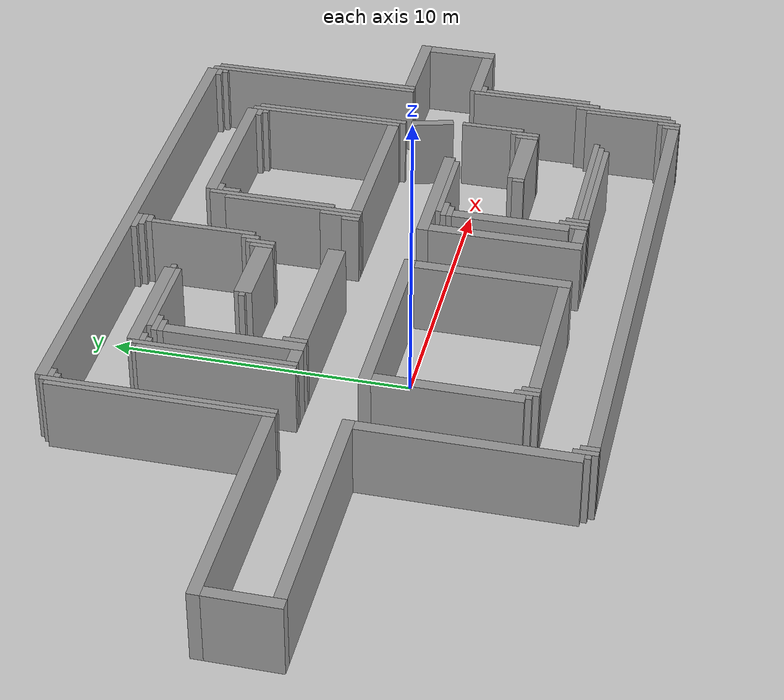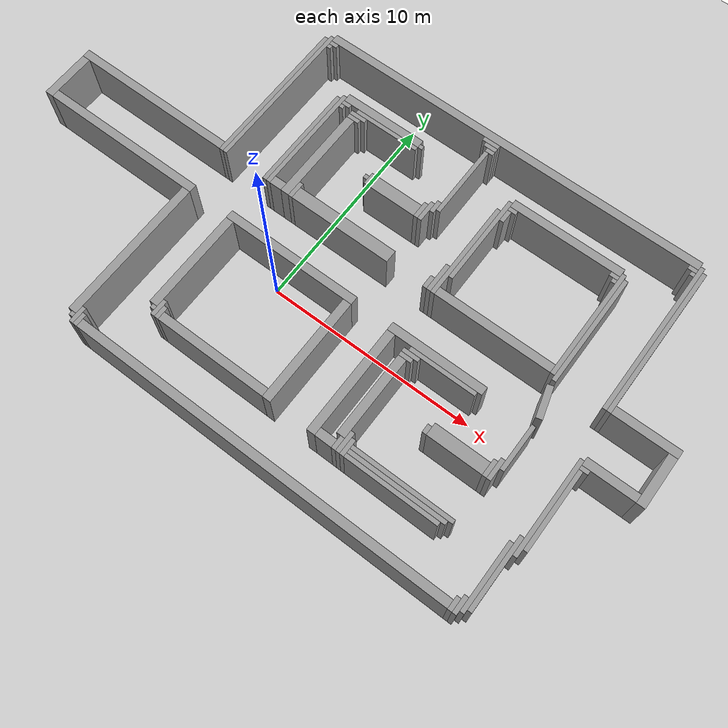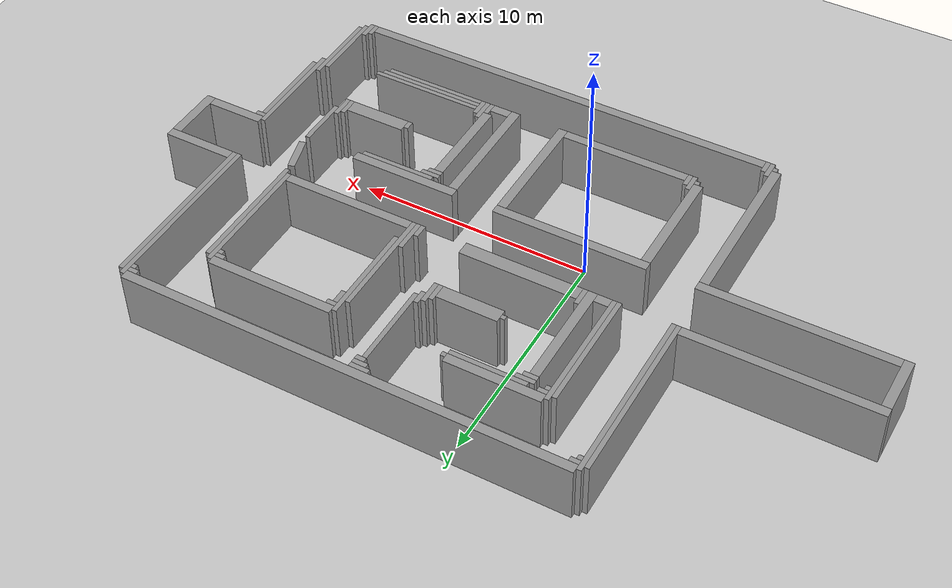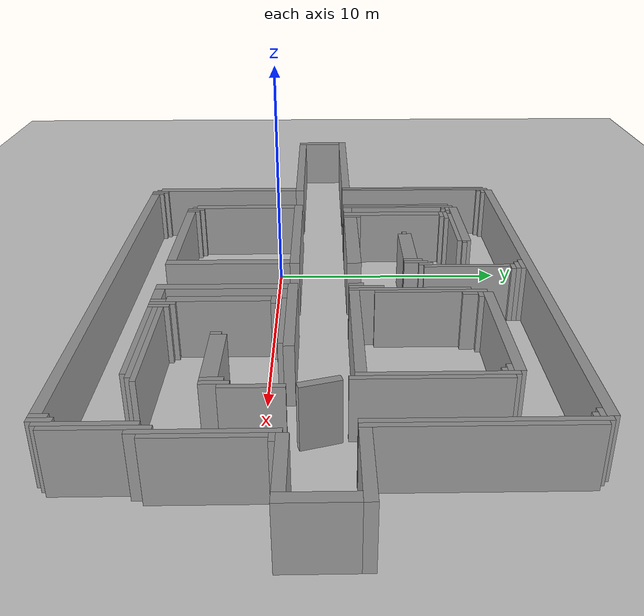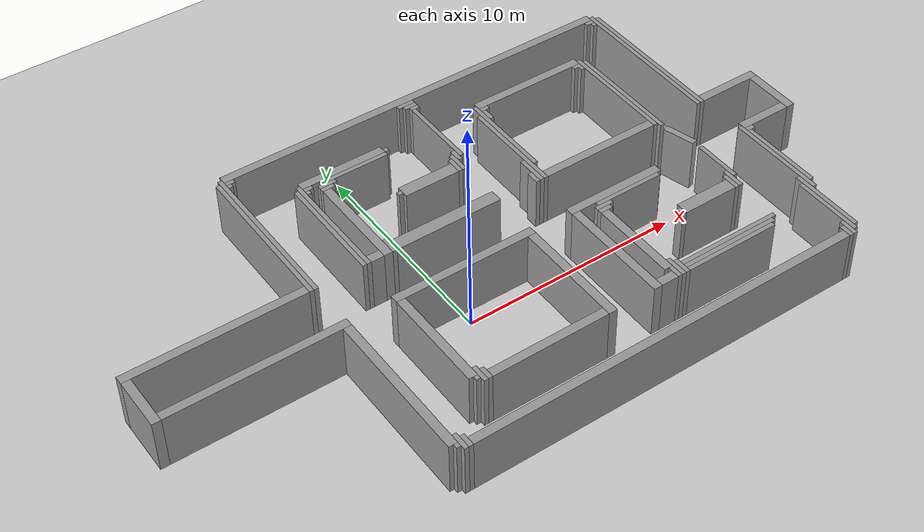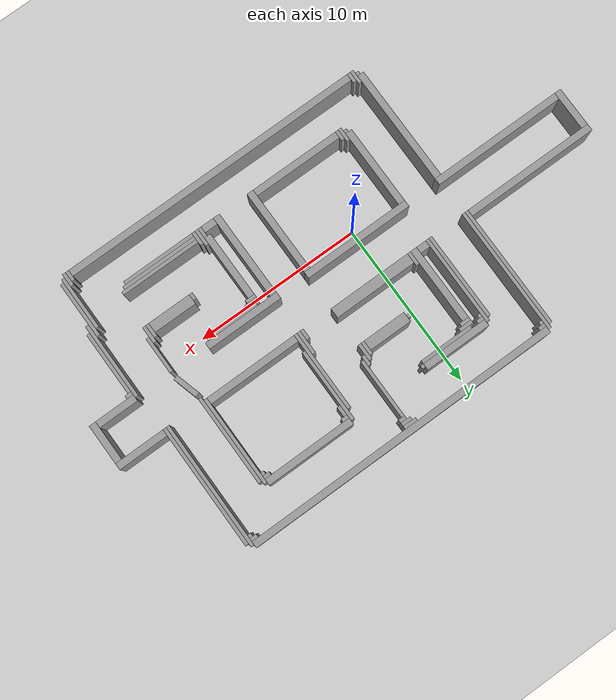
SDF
<?xml version='1.0'?>
<sdf version='1.6'>
  <world name='default'>
    <include><uri>model://ground_plane</uri></include>
    <include><uri>model://sun</uri></include>
    <physics type='ode'>
      <max_step_size>0.001</max_step_size>
      <real_time_factor>1</real_time_factor>
      <real_time_update_rate>1000</real_time_update_rate>
    </physics>
    <model name='lattice_fork_walls'>
      <static>1</static>
      <pose>0 0 0 0 0 0</pose>
    <link name='wall_0'>
      <collision name='wall_0_collision'>
        <pose>4.500 10.600 1.250 0 0 0</pose>
        <geometry><box><size>19.000 0.400 2.50</size></box></geometry>
      </collision>
      <visual name='wall_0_visual'>
        <pose>4.500 10.600 1.250 0 0 0</pose>
        <geometry><box><size>19.000 0.400 2.50</size></box></geometry>
        <material>
          <script>
            <uri>file://media/materials/scripts/gazebo.material</uri>
            <name>Gazebo/Grey</name>
          </script>
        </material>
      </visual>
    </link>
    <link name='wall_1'>
      <collision name='wall_1_collision'>
        <pose>-5.100 6.800 1.250 0 0 0</pose>
        <geometry><box><size>0.200 7.600 2.50</size></box></geometry>
      </collision>
      <visual name='wall_1_visual'>
        <pose>-5.100 6.800 1.250 0 0 0</pose>
        <geometry><box><size>0.200 7.600 2.50</size></box></geometry>
        <material>
          <script>
            <uri>file://media/materials/scripts/gazebo.material</uri>
            <name>Gazebo/Grey</name>
          </script>
        </material>
      </visual>
    </link>
    <link name='wall_2'>
      <collision name='wall_2_collision'>
        <pose>14.100 6.800 1.250 0 0 0</pose>
        <geometry><box><size>0.200 7.600 2.50</size></box></geometry>
      </collision>
      <visual name='wall_2_visual'>
        <pose>14.100 6.800 1.250 0 0 0</pose>
        <geometry><box><size>0.200 7.600 2.50</size></box></geometry>
        <material>
          <script>
            <uri>file://media/materials/scripts/gazebo.material</uri>
            <name>Gazebo/Grey</name>
          </script>
        </material>
      </visual>
    </link>
    <link name='wall_3'>
      <collision name='wall_3_collision'>
        <pose>-5.300 6.700 1.250 0 0 0</pose>
        <geometry><box><size>0.200 7.400 2.50</size></box></geometry>
      </collision>
      <visual name='wall_3_visual'>
        <pose>-5.300 6.700 1.250 0 0 0</pose>
        <geometry><box><size>0.200 7.400 2.50</size></box></geometry>
        <material>
          <script>
            <uri>file://media/materials/scripts/gazebo.material</uri>
            <name>Gazebo/Grey</name>
          </script>
        </material>
      </visual>
    </link>
    <link name='wall_4'>
      <collision name='wall_4_collision'>
        <pose>-4.800 10.300 1.250 0 0 0</pose>
        <geometry><box><size>0.400 0.200 2.50</size></box></geometry>
      </collision>
      <visual name='wall_4_visual'>
        <pose>-4.800 10.300 1.250 0 0 0</pose>
        <geometry><box><size>0.400 0.200 2.50</size></box></geometry>
        <material>
          <script>
            <uri>file://media/materials/scripts/gazebo.material</uri>
            <name>Gazebo/Grey</name>
          </script>
        </material>
      </visual>
    </link>
    <link name='wall_5'>
      <collision name='wall_5_collision'>
        <pose>3.800 10.300 1.250 0 0 0</pose>
        <geometry><box><size>0.800 0.200 2.50</size></box></geometry>
      </collision>
      <visual name='wall_5_visual'>
        <pose>3.800 10.300 1.250 0 0 0</pose>
        <geometry><box><size>0.800 0.200 2.50</size></box></geometry>
        <material>
          <script>
            <uri>file://media/materials/scripts/gazebo.material</uri>
            <name>Gazebo/Grey</name>
          </script>
        </material>
      </visual>
    </link>
    <link name='wall_6'>
      <collision name='wall_6_collision'>
        <pose>13.800 10.300 1.250 0 0 0</pose>
        <geometry><box><size>0.400 0.200 2.50</size></box></geometry>
      </collision>
      <visual name='wall_6_visual'>
        <pose>13.800 10.300 1.250 0 0 0</pose>
        <geometry><box><size>0.400 0.200 2.50</size></box></geometry>
        <material>
          <script>
            <uri>file://media/materials/scripts/gazebo.material</uri>
            <name>Gazebo/Grey</name>
          </script>
        </material>
      </visual>
    </link>
    <link name='wall_7'>
      <collision name='wall_7_collision'>
        <pose>14.300 6.700 1.250 0 0 0</pose>
        <geometry><box><size>0.200 7.400 2.50</size></box></geometry>
      </collision>
      <visual name='wall_7_visual'>
        <pose>14.300 6.700 1.250 0 0 0</pose>
        <geometry><box><size>0.200 7.400 2.50</size></box></geometry>
        <material>
          <script>
            <uri>file://media/materials/scripts/gazebo.material</uri>
            <name>Gazebo/Grey</name>
          </script>
        </material>
      </visual>
    </link>
    <link name='wall_8'>
      <collision name='wall_8_collision'>
        <pose>-4.900 10.100 1.250 0 0 0</pose>
        <geometry><box><size>0.200 0.200 2.50</size></box></geometry>
      </collision>
      <visual name='wall_8_visual'>
        <pose>-4.900 10.100 1.250 0 0 0</pose>
        <geometry><box><size>0.200 0.200 2.50</size></box></geometry>
        <material>
          <script>
            <uri>file://media/materials/scripts/gazebo.material</uri>
            <name>Gazebo/Grey</name>
          </script>
        </material>
      </visual>
    </link>
    <link name='wall_9'>
      <collision name='wall_9_collision'>
        <pose>3.900 10.100 1.250 0 0 0</pose>
        <geometry><box><size>0.600 0.200 2.50</size></box></geometry>
      </collision>
      <visual name='wall_9_visual'>
        <pose>3.900 10.100 1.250 0 0 0</pose>
        <geometry><box><size>0.600 0.200 2.50</size></box></geometry>
        <material>
          <script>
            <uri>file://media/materials/scripts/gazebo.material</uri>
            <name>Gazebo/Grey</name>
          </script>
        </material>
      </visual>
    </link>
    <link name='wall_10'>
      <collision name='wall_10_collision'>
        <pose>13.900 10.100 1.250 0 0 0</pose>
        <geometry><box><size>0.200 0.200 2.50</size></box></geometry>
      </collision>
      <visual name='wall_10_visual'>
        <pose>13.900 10.100 1.250 0 0 0</pose>
        <geometry><box><size>0.200 0.200 2.50</size></box></geometry>
        <material>
          <script>
            <uri>file://media/materials/scripts/gazebo.material</uri>
            <name>Gazebo/Grey</name>
          </script>
        </material>
      </visual>
    </link>
    <link name='wall_11'>
      <collision name='wall_11_collision'>
        <pose>4.000 9.900 1.250 0 0 0</pose>
        <geometry><box><size>0.400 0.200 2.50</size></box></geometry>
      </collision>
      <visual name='wall_11_visual'>
        <pose>4.000 9.900 1.250 0 0 0</pose>
        <geometry><box><size>0.400 0.200 2.50</size></box></geometry>
        <material>
          <script>
            <uri>file://media/materials/scripts/gazebo.material</uri>
            <name>Gazebo/Grey</name>
          </script>
        </material>
      </visual>
    </link>
    <link name='wall_12'>
      <collision name='wall_12_collision'>
        <pose>3.900 8.000 1.250 0 0 0</pose>
        <geometry><box><size>0.200 3.600 2.50</size></box></geometry>
      </collision>
      <visual name='wall_12_visual'>
        <pose>3.900 8.000 1.250 0 0 0</pose>
        <geometry><box><size>0.200 3.600 2.50</size></box></geometry>
        <material>
          <script>
            <uri>file://media/materials/scripts/gazebo.material</uri>
            <name>Gazebo/Grey</name>
          </script>
        </material>
      </visual>
    </link>
    <link name='wall_13'>
      <collision name='wall_13_collision'>
        <pose>-0.600 8.400 1.250 0 0 0</pose>
        <geometry><box><size>4.000 0.400 2.50</size></box></geometry>
      </collision>
      <visual name='wall_13_visual'>
        <pose>-0.600 8.400 1.250 0 0 0</pose>
        <geometry><box><size>4.000 0.400 2.50</size></box></geometry>
        <material>
          <script>
            <uri>file://media/materials/scripts/gazebo.material</uri>
            <name>Gazebo/Grey</name>
          </script>
        </material>
      </visual>
    </link>
    <link name='wall_14'>
      <collision name='wall_14_collision'>
        <pose>8.900 8.400 1.250 0 0 0</pose>
        <geometry><box><size>5.400 0.400 2.50</size></box></geometry>
      </collision>
      <visual name='wall_14_visual'>
        <pose>8.900 8.400 1.250 0 0 0</pose>
        <geometry><box><size>5.400 0.400 2.50</size></box></geometry>
        <material>
          <script>
            <uri>file://media/materials/scripts/gazebo.material</uri>
            <name>Gazebo/Grey</name>
          </script>
        </material>
      </visual>
    </link>
    <link name='wall_15'>
      <collision name='wall_15_collision'>
        <pose>-2.700 5.700 1.250 0 0 0</pose>
        <geometry><box><size>0.200 5.400 2.50</size></box></geometry>
      </collision>
      <visual name='wall_15_visual'>
        <pose>-2.700 5.700 1.250 0 0 0</pose>
        <geometry><box><size>0.200 5.400 2.50</size></box></geometry>
        <material>
          <script>
            <uri>file://media/materials/scripts/gazebo.material</uri>
            <name>Gazebo/Grey</name>
          </script>
        </material>
      </visual>
    </link>
    <link name='wall_16'>
      <collision name='wall_16_collision'>
        <pose>1.500 8.300 1.250 0 0 0</pose>
        <geometry><box><size>0.200 0.200 2.50</size></box></geometry>
      </collision>
      <visual name='wall_16_visual'>
        <pose>1.500 8.300 1.250 0 0 0</pose>
        <geometry><box><size>0.200 0.200 2.50</size></box></geometry>
        <material>
          <script>
            <uri>file://media/materials/scripts/gazebo.material</uri>
            <name>Gazebo/Grey</name>
          </script>
        </material>
      </visual>
    </link>
    <link name='wall_17'>
      <collision name='wall_17_collision'>
        <pose>6.100 6.200 1.250 0 0 0</pose>
        <geometry><box><size>0.200 4.400 2.50</size></box></geometry>
      </collision>
      <visual name='wall_17_visual'>
        <pose>6.100 6.200 1.250 0 0 0</pose>
        <geometry><box><size>0.200 4.400 2.50</size></box></geometry>
        <material>
          <script>
            <uri>file://media/materials/scripts/gazebo.material</uri>
            <name>Gazebo/Grey</name>
          </script>
        </material>
      </visual>
    </link>
    <link name='wall_18'>
      <collision name='wall_18_collision'>
        <pose>11.700 5.700 1.250 0 0 0</pose>
        <geometry><box><size>0.200 5.400 2.50</size></box></geometry>
      </collision>
      <visual name='wall_18_visual'>
        <pose>11.700 5.700 1.250 0 0 0</pose>
        <geometry><box><size>0.200 5.400 2.50</size></box></geometry>
        <material>
          <script>
            <uri>file://media/materials/scripts/gazebo.material</uri>
            <name>Gazebo/Grey</name>
          </script>
        </material>
      </visual>
    </link>
    <link name='wall_19'>
      <collision name='wall_19_collision'>
        <pose>-2.900 5.600 1.250 0 0 0</pose>
        <geometry><box><size>0.200 5.200 2.50</size></box></geometry>
      </collision>
      <visual name='wall_19_visual'>
        <pose>-2.900 5.600 1.250 0 0 0</pose>
        <geometry><box><size>0.200 5.200 2.50</size></box></geometry>
        <material>
          <script>
            <uri>file://media/materials/scripts/gazebo.material</uri>
            <name>Gazebo/Grey</name>
          </script>
        </material>
      </visual>
    </link>
    <link name='wall_20'>
      <collision name='wall_20_collision'>
        <pose>-2.400 8.100 1.250 0 0 0</pose>
        <geometry><box><size>0.400 0.200 2.50</size></box></geometry>
      </collision>
      <visual name='wall_20_visual'>
        <pose>-2.400 8.100 1.250 0 0 0</pose>
        <geometry><box><size>0.400 0.200 2.50</size></box></geometry>
        <material>
          <script>
            <uri>file://media/materials/scripts/gazebo.material</uri>
            <name>Gazebo/Grey</name>
          </script>
        </material>
      </visual>
    </link>
    <link name='wall_21'>
      <collision name='wall_21_collision'>
        <pose>-0.200 8.100 1.250 0 0 0</pose>
        <geometry><box><size>3.200 0.200 2.50</size></box></geometry>
      </collision>
      <visual name='wall_21_visual'>
        <pose>-0.200 8.100 1.250 0 0 0</pose>
        <geometry><box><size>3.200 0.200 2.50</size></box></geometry>
        <material>
          <script>
            <uri>file://media/materials/scripts/gazebo.material</uri>
            <name>Gazebo/Grey</name>
          </script>
        </material>
      </visual>
    </link>
    <link name='wall_22'>
      <collision name='wall_22_collision'>
        <pose>6.400 8.100 1.250 0 0 0</pose>
        <geometry><box><size>0.400 0.200 2.50</size></box></geometry>
      </collision>
      <visual name='wall_22_visual'>
        <pose>6.400 8.100 1.250 0 0 0</pose>
        <geometry><box><size>0.400 0.200 2.50</size></box></geometry>
        <material>
          <script>
            <uri>file://media/materials/scripts/gazebo.material</uri>
            <name>Gazebo/Grey</name>
          </script>
        </material>
      </visual>
    </link>
    <link name='wall_23'>
      <collision name='wall_23_collision'>
        <pose>11.400 8.100 1.250 0 0 0</pose>
        <geometry><box><size>0.400 0.200 2.50</size></box></geometry>
      </collision>
      <visual name='wall_23_visual'>
        <pose>11.400 8.100 1.250 0 0 0</pose>
        <geometry><box><size>0.400 0.200 2.50</size></box></geometry>
        <material>
          <script>
            <uri>file://media/materials/scripts/gazebo.material</uri>
            <name>Gazebo/Grey</name>
          </script>
        </material>
      </visual>
    </link>
    <link name='wall_24'>
      <collision name='wall_24_collision'>
        <pose>11.900 5.500 1.250 0 0 0</pose>
        <geometry><box><size>0.200 5.400 2.50</size></box></geometry>
      </collision>
      <visual name='wall_24_visual'>
        <pose>11.900 5.500 1.250 0 0 0</pose>
        <geometry><box><size>0.200 5.400 2.50</size></box></geometry>
        <material>
          <script>
            <uri>file://media/materials/scripts/gazebo.material</uri>
            <name>Gazebo/Grey</name>
          </script>
        </material>
      </visual>
    </link>
    <link name='wall_25'>
      <collision name='wall_25_collision'>
        <pose>-2.500 7.900 1.250 0 0 0</pose>
        <geometry><box><size>0.200 0.200 2.50</size></box></geometry>
      </collision>
      <visual name='wall_25_visual'>
        <pose>-2.500 7.900 1.250 0 0 0</pose>
        <geometry><box><size>0.200 0.200 2.50</size></box></geometry>
        <material>
          <script>
            <uri>file://media/materials/scripts/gazebo.material</uri>
            <name>Gazebo/Grey</name>
          </script>
        </material>
      </visual>
    </link>
    <link name='wall_26'>
      <collision name='wall_26_collision'>
        <pose>-1.600 7.900 1.250 0 0 0</pose>
        <geometry><box><size>0.800 0.200 2.50</size></box></geometry>
      </collision>
      <visual name='wall_26_visual'>
        <pose>-1.600 7.900 1.250 0 0 0</pose>
        <geometry><box><size>0.800 0.200 2.50</size></box></geometry>
        <material>
          <script>
            <uri>file://media/materials/scripts/gazebo.material</uri>
            <name>Gazebo/Grey</name>
          </script>
        </material>
      </visual>
    </link>
    <link name='wall_27'>
      <collision name='wall_27_collision'>
        <pose>6.300 7.700 1.250 0 0 0</pose>
        <geometry><box><size>0.200 0.600 2.50</size></box></geometry>
      </collision>
      <visual name='wall_27_visual'>
        <pose>6.300 7.700 1.250 0 0 0</pose>
        <geometry><box><size>0.200 0.600 2.50</size></box></geometry>
        <material>
          <script>
            <uri>file://media/materials/scripts/gazebo.material</uri>
            <name>Gazebo/Grey</name>
          </script>
        </material>
      </visual>
    </link>
    <link name='wall_28'>
      <collision name='wall_28_collision'>
        <pose>11.500 7.900 1.250 0 0 0</pose>
        <geometry><box><size>0.200 0.200 2.50</size></box></geometry>
      </collision>
      <visual name='wall_28_visual'>
        <pose>11.500 7.900 1.250 0 0 0</pose>
        <geometry><box><size>0.200 0.200 2.50</size></box></geometry>
        <material>
          <script>
            <uri>file://media/materials/scripts/gazebo.material</uri>
            <name>Gazebo/Grey</name>
          </script>
        </material>
      </visual>
    </link>
    <link name='wall_29'>
      <collision name='wall_29_collision'>
        <pose>-1.700 7.700 1.250 0 0 0</pose>
        <geometry><box><size>0.600 0.200 2.50</size></box></geometry>
      </collision>
      <visual name='wall_29_visual'>
        <pose>-1.700 7.700 1.250 0 0 0</pose>
        <geometry><box><size>0.600 0.200 2.50</size></box></geometry>
        <material>
          <script>
            <uri>file://media/materials/scripts/gazebo.material</uri>
            <name>Gazebo/Grey</name>
          </script>
        </material>
      </visual>
    </link>
    <link name='wall_30'>
      <collision name='wall_30_collision'>
        <pose>5.900 5.400 1.250 0 0 0</pose>
        <geometry><box><size>0.200 4.800 2.50</size></box></geometry>
      </collision>
      <visual name='wall_30_visual'>
        <pose>5.900 5.400 1.250 0 0 0</pose>
        <geometry><box><size>0.200 4.800 2.50</size></box></geometry>
        <material>
          <script>
            <uri>file://media/materials/scripts/gazebo.material</uri>
            <name>Gazebo/Grey</name>
          </script>
        </material>
      </visual>
    </link>
    <link name='wall_31'>
      <collision name='wall_31_collision'>
        <pose>-1.800 5.300 1.250 0 0 0</pose>
        <geometry><box><size>0.400 4.600 2.50</size></box></geometry>
      </collision>
      <visual name='wall_31_visual'>
        <pose>-1.800 5.300 1.250 0 0 0</pose>
        <geometry><box><size>0.400 4.600 2.50</size></box></geometry>
        <material>
          <script>
            <uri>file://media/materials/scripts/gazebo.material</uri>
            <name>Gazebo/Grey</name>
          </script>
        </material>
      </visual>
    </link>
    <link name='wall_32'>
      <collision name='wall_32_collision'>
        <pose>3.700 6.300 1.250 0 0 0</pose>
        <geometry><box><size>0.200 0.600 2.50</size></box></geometry>
      </collision>
      <visual name='wall_32_visual'>
        <pose>3.700 6.300 1.250 0 0 0</pose>
        <geometry><box><size>0.200 0.600 2.50</size></box></geometry>
        <material>
          <script>
            <uri>file://media/materials/scripts/gazebo.material</uri>
            <name>Gazebo/Grey</name>
          </script>
        </material>
      </visual>
    </link>
    <link name='wall_33'>
      <collision name='wall_33_collision'>
        <pose>3.500 5.900 1.250 0 0 0</pose>
        <geometry><box><size>0.200 1.000 2.50</size></box></geometry>
      </collision>
      <visual name='wall_33_visual'>
        <pose>3.500 5.900 1.250 0 0 0</pose>
        <geometry><box><size>0.200 1.000 2.50</size></box></geometry>
        <material>
          <script>
            <uri>file://media/materials/scripts/gazebo.material</uri>
            <name>Gazebo/Grey</name>
          </script>
        </material>
      </visual>
    </link>
    <link name='wall_34'>
      <collision name='wall_34_collision'>
        <pose>3.300 5.800 1.250 0 0 0</pose>
        <geometry><box><size>0.200 0.800 2.50</size></box></geometry>
      </collision>
      <visual name='wall_34_visual'>
        <pose>3.300 5.800 1.250 0 0 0</pose>
        <geometry><box><size>0.200 0.800 2.50</size></box></geometry>
        <material>
          <script>
            <uri>file://media/materials/scripts/gazebo.material</uri>
            <name>Gazebo/Grey</name>
          </script>
        </material>
      </visual>
    </link>
    <link name='wall_35'>
      <collision name='wall_35_collision'>
        <pose>1.900 5.700 1.250 0 0 0</pose>
        <geometry><box><size>2.600 0.600 2.50</size></box></geometry>
      </collision>
      <visual name='wall_35_visual'>
        <pose>1.900 5.700 1.250 0 0 0</pose>
        <geometry><box><size>2.600 0.600 2.50</size></box></geometry>
        <material>
          <script>
            <uri>file://media/materials/scripts/gazebo.material</uri>
            <name>Gazebo/Grey</name>
          </script>
        </material>
      </visual>
    </link>
    <link name='wall_36'>
      <collision name='wall_36_collision'>
        <pose>0.500 5.700 1.250 0 0 0</pose>
        <geometry><box><size>0.200 0.200 2.50</size></box></geometry>
      </collision>
      <visual name='wall_36_visual'>
        <pose>0.500 5.700 1.250 0 0 0</pose>
        <geometry><box><size>0.200 0.200 2.50</size></box></geometry>
        <material>
          <script>
            <uri>file://media/materials/scripts/gazebo.material</uri>
            <name>Gazebo/Grey</name>
          </script>
        </material>
      </visual>
    </link>
    <link name='wall_37'>
      <collision name='wall_37_collision'>
        <pose>5.700 3.700 1.250 0 0 0</pose>
        <geometry><box><size>0.200 1.400 2.50</size></box></geometry>
      </collision>
      <visual name='wall_37_visual'>
        <pose>5.700 3.700 1.250 0 0 0</pose>
        <geometry><box><size>0.200 1.400 2.50</size></box></geometry>
        <material>
          <script>
            <uri>file://media/materials/scripts/gazebo.material</uri>
            <name>Gazebo/Grey</name>
          </script>
        </material>
      </visual>
    </link>
    <link name='wall_38'>
      <collision name='wall_38_collision'>
        <pose>-1.500 3.400 1.250 0 0 0</pose>
        <geometry><box><size>0.200 0.800 2.50</size></box></geometry>
      </collision>
      <visual name='wall_38_visual'>
        <pose>-1.500 3.400 1.250 0 0 0</pose>
        <geometry><box><size>0.200 0.800 2.50</size></box></geometry>
        <material>
          <script>
            <uri>file://media/materials/scripts/gazebo.material</uri>
            <name>Gazebo/Grey</name>
          </script>
        </material>
      </visual>
    </link>
    <link name='wall_39'>
      <collision name='wall_39_collision'>
        <pose>1.100 3.300 1.250 0 0 0</pose>
        <geometry><box><size>5.000 0.600 2.50</size></box></geometry>
      </collision>
      <visual name='wall_39_visual'>
        <pose>1.100 3.300 1.250 0 0 0</pose>
        <geometry><box><size>5.000 0.600 2.50</size></box></geometry>
        <material>
          <script>
            <uri>file://media/materials/scripts/gazebo.material</uri>
            <name>Gazebo/Grey</name>
          </script>
        </material>
      </visual>
    </link>
    <link name='wall_40'>
      <collision name='wall_40_collision'>
        <pose>5.500 3.300 1.250 0 0 0</pose>
        <geometry><box><size>0.200 0.600 2.50</size></box></geometry>
      </collision>
      <visual name='wall_40_visual'>
        <pose>5.500 3.300 1.250 0 0 0</pose>
        <geometry><box><size>0.200 0.600 2.50</size></box></geometry>
        <material>
          <script>
            <uri>file://media/materials/scripts/gazebo.material</uri>
            <name>Gazebo/Grey</name>
          </script>
        </material>
      </visual>
    </link>
    <link name='wall_41'>
      <collision name='wall_41_collision'>
        <pose>-9.400 3.200 1.250 0 0 0</pose>
        <geometry><box><size>8.000 0.400 2.50</size></box></geometry>
      </collision>
      <visual name='wall_41_visual'>
        <pose>-9.400 3.200 1.250 0 0 0</pose>
        <geometry><box><size>8.000 0.400 2.50</size></box></geometry>
        <material>
          <script>
            <uri>file://media/materials/scripts/gazebo.material</uri>
            <name>Gazebo/Grey</name>
          </script>
        </material>
      </visual>
    </link>
    <link name='wall_42'>
      <collision name='wall_42_collision'>
        <pose>-2.300 3.200 1.250 0 0 0</pose>
        <geometry><box><size>0.600 0.400 2.50</size></box></geometry>
      </collision>
      <visual name='wall_42_visual'>
        <pose>-2.300 3.200 1.250 0 0 0</pose>
        <geometry><box><size>0.600 0.400 2.50</size></box></geometry>
        <material>
          <script>
            <uri>file://media/materials/scripts/gazebo.material</uri>
            <name>Gazebo/Grey</name>
          </script>
        </material>
      </visual>
    </link>
    <link name='wall_43'>
      <collision name='wall_43_collision'>
        <pose>8.800 3.200 1.250 0 0 0</pose>
        <geometry><box><size>5.600 0.400 2.50</size></box></geometry>
      </collision>
      <visual name='wall_43_visual'>
        <pose>8.800 3.200 1.250 0 0 0</pose>
        <geometry><box><size>5.600 0.400 2.50</size></box></geometry>
        <material>
          <script>
            <uri>file://media/materials/scripts/gazebo.material</uri>
            <name>Gazebo/Grey</name>
          </script>
        </material>
      </visual>
    </link>
    <link name='wall_44'>
      <collision name='wall_44_collision'>
        <pose>15.900 3.200 1.250 0 0 0</pose>
        <geometry><box><size>3.000 0.400 2.50</size></box></geometry>
      </collision>
      <visual name='wall_44_visual'>
        <pose>15.900 3.200 1.250 0 0 0</pose>
        <geometry><box><size>3.000 0.400 2.50</size></box></geometry>
        <material>
          <script>
            <uri>file://media/materials/scripts/gazebo.material</uri>
            <name>Gazebo/Grey</name>
          </script>
        </material>
      </visual>
    </link>
    <link name='wall_45'>
      <collision name='wall_45_collision'>
        <pose>-13.200 1.800 1.250 0 0 0</pose>
        <geometry><box><size>0.400 2.400 2.50</size></box></geometry>
      </collision>
      <visual name='wall_45_visual'>
        <pose>-13.200 1.800 1.250 0 0 0</pose>
        <geometry><box><size>0.400 2.400 2.50</size></box></geometry>
        <material>
          <script>
            <uri>file://media/materials/scripts/gazebo.material</uri>
            <name>Gazebo/Grey</name>
          </script>
        </material>
      </visual>
    </link>
    <link name='wall_46'>
      <collision name='wall_46_collision'>
        <pose>17.200 1.800 1.250 0 0 0</pose>
        <geometry><box><size>0.400 2.400 2.50</size></box></geometry>
      </collision>
      <visual name='wall_46_visual'>
        <pose>17.200 1.800 1.250 0 0 0</pose>
        <geometry><box><size>0.400 2.400 2.50</size></box></geometry>
        <material>
          <script>
            <uri>file://media/materials/scripts/gazebo.material</uri>
            <name>Gazebo/Grey</name>
          </script>
        </material>
      </visual>
    </link>
    <link name='wall_47'>
      <collision name='wall_47_collision'>
        <pose>-9.000 0.800 1.250 0 0 0</pose>
        <geometry><box><size>8.000 0.400 2.50</size></box></geometry>
      </collision>
      <visual name='wall_47_visual'>
        <pose>-9.000 0.800 1.250 0 0 0</pose>
        <geometry><box><size>8.000 0.400 2.50</size></box></geometry>
        <material>
          <script>
            <uri>file://media/materials/scripts/gazebo.material</uri>
            <name>Gazebo/Grey</name>
          </script>
        </material>
      </visual>
    </link>
    <link name='wall_48'>
      <collision name='wall_48_collision'>
        <pose>0.300 0.800 1.250 0 0 0</pose>
        <geometry><box><size>6.600 0.400 2.50</size></box></geometry>
      </collision>
      <visual name='wall_48_visual'>
        <pose>0.300 0.800 1.250 0 0 0</pose>
        <geometry><box><size>6.600 0.400 2.50</size></box></geometry>
        <material>
          <script>
            <uri>file://media/materials/scripts/gazebo.material</uri>
            <name>Gazebo/Grey</name>
          </script>
        </material>
      </visual>
    </link>
    <link name='wall_49'>
      <collision name='wall_49_collision'>
        <pose>7.700 0.800 1.250 0 0 0</pose>
        <geometry><box><size>4.600 0.400 2.50</size></box></geometry>
      </collision>
      <visual name='wall_49_visual'>
        <pose>7.700 0.800 1.250 0 0 0</pose>
        <geometry><box><size>4.600 0.400 2.50</size></box></geometry>
        <material>
          <script>
            <uri>file://media/materials/scripts/gazebo.material</uri>
            <name>Gazebo/Grey</name>
          </script>
        </material>
      </visual>
    </link>
    <link name='wall_50'>
      <collision name='wall_50_collision'>
        <pose>15.800 0.800 1.250 0 0 0</pose>
        <geometry><box><size>2.400 0.400 2.50</size></box></geometry>
      </collision>
      <visual name='wall_50_visual'>
        <pose>15.800 0.800 1.250 0 0 0</pose>
        <geometry><box><size>2.400 0.400 2.50</size></box></geometry>
        <material>
          <script>
            <uri>file://media/materials/scripts/gazebo.material</uri>
            <name>Gazebo/Grey</name>
          </script>
        </material>
      </visual>
    </link>
    <link name='wall_51'>
      <collision name='wall_51_collision'>
        <pose>12.300 -0.300 1.250 0 0 0</pose>
        <geometry><box><size>0.200 2.200 2.50</size></box></geometry>
      </collision>
      <visual name='wall_51_visual'>
        <pose>12.300 -0.300 1.250 0 0 0</pose>
        <geometry><box><size>0.200 2.200 2.50</size></box></geometry>
        <material>
          <script>
            <uri>file://media/materials/scripts/gazebo.material</uri>
            <name>Gazebo/Grey</name>
          </script>
        </material>
      </visual>
    </link>
    <link name='wall_52'>
      <collision name='wall_52_collision'>
        <pose>14.500 -1.500 1.250 0 0 0</pose>
        <geometry><box><size>0.200 4.600 2.50</size></box></geometry>
      </collision>
      <visual name='wall_52_visual'>
        <pose>14.500 -1.500 1.250 0 0 0</pose>
        <geometry><box><size>0.200 4.600 2.50</size></box></geometry>
        <material>
          <script>
            <uri>file://media/materials/scripts/gazebo.material</uri>
            <name>Gazebo/Grey</name>
          </script>
        </material>
      </visual>
    </link>
    <link name='wall_53'>
      <collision name='wall_53_collision'>
        <pose>-5.200 -2.900 1.250 0 0 0</pose>
        <geometry><box><size>0.400 7.000 2.50</size></box></geometry>
      </collision>
      <visual name='wall_53_visual'>
        <pose>-5.200 -2.900 1.250 0 0 0</pose>
        <geometry><box><size>0.400 7.000 2.50</size></box></geometry>
        <material>
          <script>
            <uri>file://media/materials/scripts/gazebo.material</uri>
            <name>Gazebo/Grey</name>
          </script>
        </material>
      </visual>
    </link>
    <link name='wall_54'>
      <collision name='wall_54_collision'>
        <pose>-2.800 -1.800 1.250 0 0 0</pose>
        <geometry><box><size>0.400 4.800 2.50</size></box></geometry>
      </collision>
      <visual name='wall_54_visual'>
        <pose>-2.800 -1.800 1.250 0 0 0</pose>
        <geometry><box><size>0.400 4.800 2.50</size></box></geometry>
        <material>
          <script>
            <uri>file://media/materials/scripts/gazebo.material</uri>
            <name>Gazebo/Grey</name>
          </script>
        </material>
      </visual>
    </link>
    <link name='wall_55'>
      <collision name='wall_55_collision'>
        <pose>3.400 -2.000 1.250 0 0 0</pose>
        <geometry><box><size>0.400 5.200 2.50</size></box></geometry>
      </collision>
      <visual name='wall_55_visual'>
        <pose>3.400 -2.000 1.250 0 0 0</pose>
        <geometry><box><size>0.400 5.200 2.50</size></box></geometry>
        <material>
          <script>
            <uri>file://media/materials/scripts/gazebo.material</uri>
            <name>Gazebo/Grey</name>
          </script>
        </material>
      </visual>
    </link>
    <link name='wall_56'>
      <collision name='wall_56_collision'>
        <pose>5.600 -2.000 1.250 0 0 0</pose>
        <geometry><box><size>0.400 5.200 2.50</size></box></geometry>
      </collision>
      <visual name='wall_56_visual'>
        <pose>5.600 -2.000 1.250 0 0 0</pose>
        <geometry><box><size>0.400 5.200 2.50</size></box></geometry>
        <material>
          <script>
            <uri>file://media/materials/scripts/gazebo.material</uri>
            <name>Gazebo/Grey</name>
          </script>
        </material>
      </visual>
    </link>
    <link name='wall_57'>
      <collision name='wall_57_collision'>
        <pose>8.200 0.500 1.250 0 0 0</pose>
        <geometry><box><size>3.200 0.200 2.50</size></box></geometry>
      </collision>
      <visual name='wall_57_visual'>
        <pose>8.200 0.500 1.250 0 0 0</pose>
        <geometry><box><size>3.200 0.200 2.50</size></box></geometry>
        <material>
          <script>
            <uri>file://media/materials/scripts/gazebo.material</uri>
            <name>Gazebo/Grey</name>
          </script>
        </material>
      </visual>
    </link>
    <link name='wall_58'>
      <collision name='wall_58_collision'>
        <pose>14.800 0.500 1.250 0 0 0</pose>
        <geometry><box><size>0.400 0.200 2.50</size></box></geometry>
      </collision>
      <visual name='wall_58_visual'>
        <pose>14.800 0.500 1.250 0 0 0</pose>
        <geometry><box><size>0.400 0.200 2.50</size></box></geometry>
        <material>
          <script>
            <uri>file://media/materials/scripts/gazebo.material</uri>
            <name>Gazebo/Grey</name>
          </script>
        </material>
      </visual>
    </link>
    <link name='wall_59'>
      <collision name='wall_59_collision'>
        <pose>6.800 0.300 1.250 0 0 0</pose>
        <geometry><box><size>0.800 0.200 2.50</size></box></geometry>
      </collision>
      <visual name='wall_59_visual'>
        <pose>6.800 0.300 1.250 0 0 0</pose>
        <geometry><box><size>0.800 0.200 2.50</size></box></geometry>
        <material>
          <script>
            <uri>file://media/materials/scripts/gazebo.material</uri>
            <name>Gazebo/Grey</name>
          </script>
        </material>
      </visual>
    </link>
    <link name='wall_60'>
      <collision name='wall_60_collision'>
        <pose>14.700 -1.500 1.250 0 0 0</pose>
        <geometry><box><size>0.200 3.800 2.50</size></box></geometry>
      </collision>
      <visual name='wall_60_visual'>
        <pose>14.700 -1.500 1.250 0 0 0</pose>
        <geometry><box><size>0.200 3.800 2.50</size></box></geometry>
        <material>
          <script>
            <uri>file://media/materials/scripts/gazebo.material</uri>
            <name>Gazebo/Grey</name>
          </script>
        </material>
      </visual>
    </link>
    <link name='wall_61'>
      <collision name='wall_61_collision'>
        <pose>6.700 0.100 1.250 0 0 0</pose>
        <geometry><box><size>0.600 0.200 2.50</size></box></geometry>
      </collision>
      <visual name='wall_61_visual'>
        <pose>6.700 0.100 1.250 0 0 0</pose>
        <geometry><box><size>0.600 0.200 2.50</size></box></geometry>
        <material>
          <script>
            <uri>file://media/materials/scripts/gazebo.material</uri>
            <name>Gazebo/Grey</name>
          </script>
        </material>
      </visual>
    </link>
    <link name='wall_62'>
      <collision name='wall_62_collision'>
        <pose>6.600 -2.000 1.250 0 0 0</pose>
        <geometry><box><size>0.400 4.000 2.50</size></box></geometry>
      </collision>
      <visual name='wall_62_visual'>
        <pose>6.600 -2.000 1.250 0 0 0</pose>
        <geometry><box><size>0.400 4.000 2.50</size></box></geometry>
        <material>
          <script>
            <uri>file://media/materials/scripts/gazebo.material</uri>
            <name>Gazebo/Grey</name>
          </script>
        </material>
      </visual>
    </link>
    <link name='wall_63'>
      <collision name='wall_63_collision'>
        <pose>12.100 -1.500 1.250 0 0 0</pose>
        <geometry><box><size>0.200 1.000 2.50</size></box></geometry>
      </collision>
      <visual name='wall_63_visual'>
        <pose>12.100 -1.500 1.250 0 0 0</pose>
        <geometry><box><size>0.200 1.000 2.50</size></box></geometry>
        <material>
          <script>
            <uri>file://media/materials/scripts/gazebo.material</uri>
            <name>Gazebo/Grey</name>
          </script>
        </material>
      </visual>
    </link>
    <link name='wall_64'>
      <collision name='wall_64_collision'>
        <pose>11.900 -1.600 1.250 0 0 0</pose>
        <geometry><box><size>0.200 0.800 2.50</size></box></geometry>
      </collision>
      <visual name='wall_64_visual'>
        <pose>11.900 -1.600 1.250 0 0 0</pose>
        <geometry><box><size>0.200 0.800 2.50</size></box></geometry>
        <material>
          <script>
            <uri>file://media/materials/scripts/gazebo.material</uri>
            <name>Gazebo/Grey</name>
          </script>
        </material>
      </visual>
    </link>
    <link name='wall_65'>
      <collision name='wall_65_collision'>
        <pose>10.500 -1.700 1.250 0 0 0</pose>
        <geometry><box><size>2.600 0.600 2.50</size></box></geometry>
      </collision>
      <visual name='wall_65_visual'>
        <pose>10.500 -1.700 1.250 0 0 0</pose>
        <geometry><box><size>2.600 0.600 2.50</size></box></geometry>
        <material>
          <script>
            <uri>file://media/materials/scripts/gazebo.material</uri>
            <name>Gazebo/Grey</name>
          </script>
        </material>
      </visual>
    </link>
    <link name='wall_66'>
      <collision name='wall_66_collision'>
        <pose>9.100 -1.800 1.250 0 0 0</pose>
        <geometry><box><size>0.200 0.400 2.50</size></box></geometry>
      </collision>
      <visual name='wall_66_visual'>
        <pose>9.100 -1.800 1.250 0 0 0</pose>
        <geometry><box><size>0.200 0.400 2.50</size></box></geometry>
        <material>
          <script>
            <uri>file://media/materials/scripts/gazebo.material</uri>
            <name>Gazebo/Grey</name>
          </script>
        </material>
      </visual>
    </link>
    <link name='wall_67'>
      <collision name='wall_67_collision'>
        <pose>14.300 -4.700 1.250 0 0 0</pose>
        <geometry><box><size>0.200 3.400 2.50</size></box></geometry>
      </collision>
      <visual name='wall_67_visual'>
        <pose>14.300 -4.700 1.250 0 0 0</pose>
        <geometry><box><size>0.200 3.400 2.50</size></box></geometry>
        <material>
          <script>
            <uri>file://media/materials/scripts/gazebo.material</uri>
            <name>Gazebo/Grey</name>
          </script>
        </material>
      </visual>
    </link>
    <link name='wall_68'>
      <collision name='wall_68_collision'>
        <pose>14.100 -5.000 1.250 0 0 0</pose>
        <geometry><box><size>0.200 3.200 2.50</size></box></geometry>
      </collision>
      <visual name='wall_68_visual'>
        <pose>14.100 -5.000 1.250 0 0 0</pose>
        <geometry><box><size>0.200 3.200 2.50</size></box></geometry>
        <material>
          <script>
            <uri>file://media/materials/scripts/gazebo.material</uri>
            <name>Gazebo/Grey</name>
          </script>
        </material>
      </visual>
    </link>
    <link name='wall_69'>
      <collision name='wall_69_collision'>
        <pose>6.900 -4.100 1.250 0 0 0</pose>
        <geometry><box><size>0.200 1.000 2.50</size></box></geometry>
      </collision>
      <visual name='wall_69_visual'>
        <pose>6.900 -4.100 1.250 0 0 0</pose>
        <geometry><box><size>0.200 1.000 2.50</size></box></geometry>
        <material>
          <script>
            <uri>file://media/materials/scripts/gazebo.material</uri>
            <name>Gazebo/Grey</name>
          </script>
        </material>
      </visual>
    </link>
    <link name='wall_70'>
      <collision name='wall_70_collision'>
        <pose>-2.500 -4.200 1.250 0 0 0</pose>
        <geometry><box><size>0.200 0.800 2.50</size></box></geometry>
      </collision>
      <visual name='wall_70_visual'>
        <pose>-2.500 -4.200 1.250 0 0 0</pose>
        <geometry><box><size>0.200 0.800 2.50</size></box></geometry>
        <material>
          <script>
            <uri>file://media/materials/scripts/gazebo.material</uri>
            <name>Gazebo/Grey</name>
          </script>
        </material>
      </visual>
    </link>
    <link name='wall_71'>
      <collision name='wall_71_collision'>
        <pose>7.100 -4.200 1.250 0 0 0</pose>
        <geometry><box><size>0.200 0.800 2.50</size></box></geometry>
      </collision>
      <visual name='wall_71_visual'>
        <pose>7.100 -4.200 1.250 0 0 0</pose>
        <geometry><box><size>0.200 0.800 2.50</size></box></geometry>
        <material>
          <script>
            <uri>file://media/materials/scripts/gazebo.material</uri>
            <name>Gazebo/Grey</name>
          </script>
        </material>
      </visual>
    </link>
    <link name='wall_72'>
      <collision name='wall_72_collision'>
        <pose>-2.300 -4.300 1.250 0 0 0</pose>
        <geometry><box><size>0.200 0.600 2.50</size></box></geometry>
      </collision>
      <visual name='wall_72_visual'>
        <pose>-2.300 -4.300 1.250 0 0 0</pose>
        <geometry><box><size>0.200 0.600 2.50</size></box></geometry>
        <material>
          <script>
            <uri>file://media/materials/scripts/gazebo.material</uri>
            <name>Gazebo/Grey</name>
          </script>
        </material>
      </visual>
    </link>
    <link name='wall_73'>
      <collision name='wall_73_collision'>
        <pose>6.700 -4.300 1.250 0 0 0</pose>
        <geometry><box><size>0.200 0.600 2.50</size></box></geometry>
      </collision>
      <visual name='wall_73_visual'>
        <pose>6.700 -4.300 1.250 0 0 0</pose>
        <geometry><box><size>0.200 0.600 2.50</size></box></geometry>
        <material>
          <script>
            <uri>file://media/materials/scripts/gazebo.material</uri>
            <name>Gazebo/Grey</name>
          </script>
        </material>
      </visual>
    </link>
    <link name='wall_74'>
      <collision name='wall_74_collision'>
        <pose>9.600 -4.100 1.250 0 0 0</pose>
        <geometry><box><size>4.800 0.200 2.50</size></box></geometry>
      </collision>
      <visual name='wall_74_visual'>
        <pose>9.600 -4.100 1.250 0 0 0</pose>
        <geometry><box><size>4.800 0.200 2.50</size></box></geometry>
        <material>
          <script>
            <uri>file://media/materials/scripts/gazebo.material</uri>
            <name>Gazebo/Grey</name>
          </script>
        </material>
      </visual>
    </link>
    <link name='wall_75'>
      <collision name='wall_75_collision'>
        <pose>-2.700 -4.300 1.250 0 0 0</pose>
        <geometry><box><size>0.200 0.200 2.50</size></box></geometry>
      </collision>
      <visual name='wall_75_visual'>
        <pose>-2.700 -4.300 1.250 0 0 0</pose>
        <geometry><box><size>0.200 0.200 2.50</size></box></geometry>
        <material>
          <script>
            <uri>file://media/materials/scripts/gazebo.material</uri>
            <name>Gazebo/Grey</name>
          </script>
        </material>
      </visual>
    </link>
    <link name='wall_76'>
      <collision name='wall_76_collision'>
        <pose>0.500 -4.400 1.250 0 0 0</pose>
        <geometry><box><size>5.400 0.400 2.50</size></box></geometry>
      </collision>
      <visual name='wall_76_visual'>
        <pose>0.500 -4.400 1.250 0 0 0</pose>
        <geometry><box><size>5.400 0.400 2.50</size></box></geometry>
        <material>
          <script>
            <uri>file://media/materials/scripts/gazebo.material</uri>
            <name>Gazebo/Grey</name>
          </script>
        </material>
      </visual>
    </link>
    <link name='wall_77'>
      <collision name='wall_77_collision'>
        <pose>6.200 -4.400 1.250 0 0 0</pose>
        <geometry><box><size>0.800 0.400 2.50</size></box></geometry>
      </collision>
      <visual name='wall_77_visual'>
        <pose>6.200 -4.400 1.250 0 0 0</pose>
        <geometry><box><size>0.800 0.400 2.50</size></box></geometry>
        <material>
          <script>
            <uri>file://media/materials/scripts/gazebo.material</uri>
            <name>Gazebo/Grey</name>
          </script>
        </material>
      </visual>
    </link>
    <link name='wall_78'>
      <collision name='wall_78_collision'>
        <pose>9.500 -4.300 1.250 0 0 0</pose>
        <geometry><box><size>4.600 0.200 2.50</size></box></geometry>
      </collision>
      <visual name='wall_78_visual'>
        <pose>9.500 -4.300 1.250 0 0 0</pose>
        <geometry><box><size>4.600 0.200 2.50</size></box></geometry>
        <material>
          <script>
            <uri>file://media/materials/scripts/gazebo.material</uri>
            <name>Gazebo/Grey</name>
          </script>
        </material>
      </visual>
    </link>
    <link name='wall_79'>
      <collision name='wall_79_collision'>
        <pose>9.400 -4.500 1.250 0 0 0</pose>
        <geometry><box><size>4.400 0.200 2.50</size></box></geometry>
      </collision>
      <visual name='wall_79_visual'>
        <pose>9.400 -4.500 1.250 0 0 0</pose>
        <geometry><box><size>4.400 0.200 2.50</size></box></geometry>
        <material>
          <script>
            <uri>file://media/materials/scripts/gazebo.material</uri>
            <name>Gazebo/Grey</name>
          </script>
        </material>
      </visual>
    </link>
    <link name='wall_80'>
      <collision name='wall_80_collision'>
        <pose>-4.900 -6.400 1.250 0 0 0</pose>
        <geometry><box><size>0.200 0.800 2.50</size></box></geometry>
      </collision>
      <visual name='wall_80_visual'>
        <pose>-4.900 -6.400 1.250 0 0 0</pose>
        <geometry><box><size>0.200 0.800 2.50</size></box></geometry>
        <material>
          <script>
            <uri>file://media/materials/scripts/gazebo.material</uri>
            <name>Gazebo/Grey</name>
          </script>
        </material>
      </visual>
    </link>
    <link name='wall_81'>
      <collision name='wall_81_collision'>
        <pose>13.900 -6.400 1.250 0 0 0</pose>
        <geometry><box><size>0.200 0.800 2.50</size></box></geometry>
      </collision>
      <visual name='wall_81_visual'>
        <pose>13.900 -6.400 1.250 0 0 0</pose>
        <geometry><box><size>0.200 0.800 2.50</size></box></geometry>
        <material>
          <script>
            <uri>file://media/materials/scripts/gazebo.material</uri>
            <name>Gazebo/Grey</name>
          </script>
        </material>
      </visual>
    </link>
    <link name='wall_82'>
      <collision name='wall_82_collision'>
        <pose>-4.700 -6.500 1.250 0 0 0</pose>
        <geometry><box><size>0.200 0.600 2.50</size></box></geometry>
      </collision>
      <visual name='wall_82_visual'>
        <pose>-4.700 -6.500 1.250 0 0 0</pose>
        <geometry><box><size>0.200 0.600 2.50</size></box></geometry>
        <material>
          <script>
            <uri>file://media/materials/scripts/gazebo.material</uri>
            <name>Gazebo/Grey</name>
          </script>
        </material>
      </visual>
    </link>
    <link name='wall_83'>
      <collision name='wall_83_collision'>
        <pose>13.700 -6.500 1.250 0 0 0</pose>
        <geometry><box><size>0.200 0.600 2.50</size></box></geometry>
      </collision>
      <visual name='wall_83_visual'>
        <pose>13.700 -6.500 1.250 0 0 0</pose>
        <geometry><box><size>0.200 0.600 2.50</size></box></geometry>
        <material>
          <script>
            <uri>file://media/materials/scripts/gazebo.material</uri>
            <name>Gazebo/Grey</name>
          </script>
        </material>
      </visual>
    </link>
    <link name='wall_84'>
      <collision name='wall_84_collision'>
        <pose>-5.100 -6.500 1.250 0 0 0</pose>
        <geometry><box><size>0.200 0.200 2.50</size></box></geometry>
      </collision>
      <visual name='wall_84_visual'>
        <pose>-5.100 -6.500 1.250 0 0 0</pose>
        <geometry><box><size>0.200 0.200 2.50</size></box></geometry>
        <material>
          <script>
            <uri>file://media/materials/scripts/gazebo.material</uri>
            <name>Gazebo/Grey</name>
          </script>
        </material>
      </visual>
    </link>
    <link name='wall_85'>
      <collision name='wall_85_collision'>
        <pose>4.500 -6.600 1.250 0 0 0</pose>
        <geometry><box><size>18.200 0.400 2.50</size></box></geometry>
      </collision>
      <visual name='wall_85_visual'>
        <pose>4.500 -6.600 1.250 0 0 0</pose>
        <geometry><box><size>18.200 0.400 2.50</size></box></geometry>
        <material>
          <script>
            <uri>file://media/materials/scripts/gazebo.material</uri>
            <name>Gazebo/Grey</name>
          </script>
        </material>
      </visual>
    </link>
    <link name='wall_86'>
      <collision name='wall_86_collision'>
        <pose>12.100 1.865 1.250 0 0 -1.29805</pose>
        <geometry><box><size>1.485 0.300 2.50</size></box></geometry>
      </collision>
      <visual name='wall_86_visual'>
        <pose>12.100 1.865 1.250 0 0 -1.29805</pose>
        <geometry><box><size>1.485 0.300 2.50</size></box></geometry>
        <material>
          <script>
            <uri>file://media/materials/scripts/gazebo.material</uri>
            <name>Gazebo/Grey</name>
          </script>
        </material>
      </visual>
    </link>
    </model>
  </world>
</sdf>
